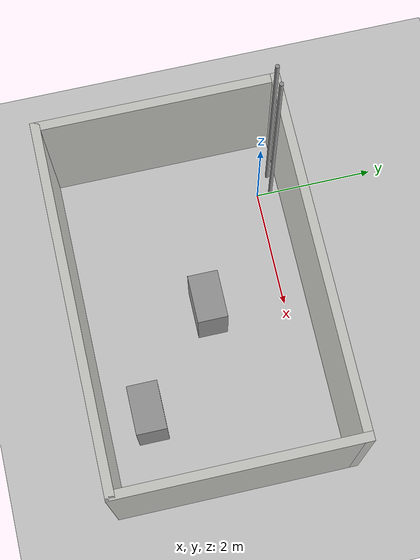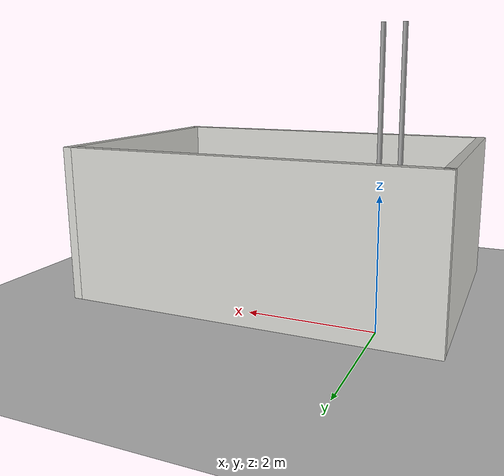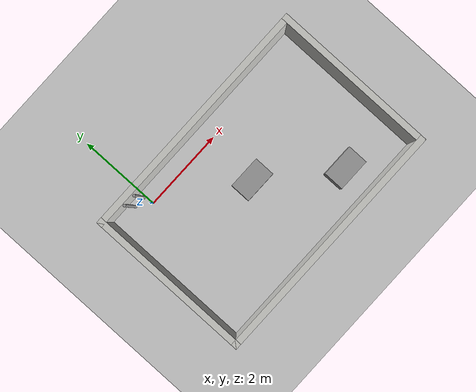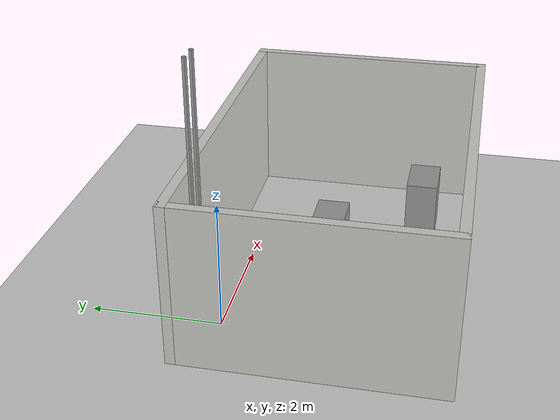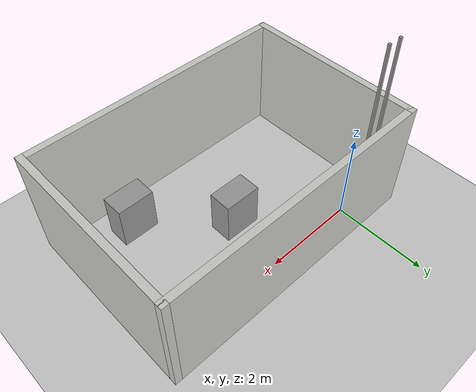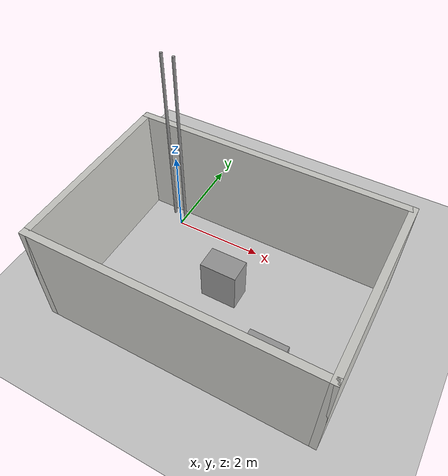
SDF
<sdf version="1.7">
 <world name="default">
  <light name="sun" type="directional">
   <pose>0 0 10 0 -0 0</pose>
   <diffuse>0.8 0.8 0.8 1</diffuse>
   <specular>0.2 0.2 0.2 1</specular>
   <attenuation>
    <range>1000</range>
    <constant>0.9</constant>
    <linear>0.01</linear>
    <quadratic>0.001</quadratic>
   </attenuation>
   <direction>-0.5 0.1 -0.9</direction>
   <spot><inner_angle>0</inner_angle><outer_angle>0</outer_angle><falloff>0</falloff></spot>
  </light>
  <model name="ground_plane">
   <static>1</static>
   <link name="link">
    <collision name="collision">
     <geometry><plane><normal>0 0 1</normal><size>100 100</size></plane></geometry>
     <surface>
      <contact><collide_bitmask>65535</collide_bitmask></contact>
      <friction><ode><mu>100</mu><mu2>50</mu2></ode></friction>
     </surface>
    </collision>
    <visual name="visual">
     <cast_shadows>0</cast_shadows>
     <geometry><plane><normal>0 0 1</normal><size>100 100</size></plane></geometry>
     <material>
      <script><uri>file://media/materials/scripts/gazebo.material</uri><name>Gazebo/Grey</name></script>
     </material>
    </visual>
   </link>
  </model>
  <gravity>0 0 -9.8</gravity>
  <magnetic_field>6e-06 2.3e-05 -4.2e-05</magnetic_field>
  <atmosphere type="adiabatic"/>
  <physics type="ode">
   <max_step_size>0.001</max_step_size>
   <real_time_factor>1</real_time_factor>
   <real_time_update_rate>1000</real_time_update_rate>
  </physics>
  <scene><ambient>0.4 0.4 0.4 1</ambient><background>0.7 0.7 0.7 1</background><shadows>1</shadows></scene>
  <spherical_coordinates>
   <surface_model>EARTH_WGS84</surface_model>
   <latitude_deg>0</latitude_deg>
   <longitude_deg>0</longitude_deg>
   <elevation>0</elevation>
   <heading_deg>0</heading_deg>
  </spherical_coordinates>
  <model name="pool">
   <pose>1.94951 -1.47242 0 0 -0 0</pose>
   <link name="Wall_14">
    <collision name="Wall_14_Collision">
     <geometry><box><size>4 0.15 2.5</size></box></geometry>
     <pose>0 0 1.25 0 -0 0</pose>
    </collision>
    <visual name="Wall_14_Visual">
     <pose>0 0 1.25 0 -0 0</pose>
     <geometry><box><size>4 0.15 2.5</size></box></geometry>
     <material>
      <script><uri>file://media/materials/scripts/gazebo.material</uri><name>Gazebo/CeilingTiled</name></script>
      <ambient>0.435294 0.796078 0.67451 1</ambient>
     </material>
     <meta><layer>0</layer></meta>
    </visual>
    <pose>-2.925 0 0 0 -0 -1.5708</pose>
   </link>
   <link name="Wall_15">
    <collision name="Wall_15_Collision">
     <geometry><box><size>6 0.15 2.5</size></box></geometry>
     <pose>0 0 1.25 0 -0 0</pose>
    </collision>
    <visual name="Wall_15_Visual">
     <pose>0 0 1.25 0 -0 0</pose>
     <geometry><box><size>6 0.15 2.5</size></box></geometry>
     <material>
      <script><uri>file://media/materials/scripts/gazebo.material</uri><name>Gazebo/CeilingTiled</name></script>
      <ambient>0.435294 0.796078 0.67451 1</ambient>
     </material>
     <meta><layer>0</layer></meta>
    </visual>
    <pose>-0 -1.925 0 0 -0 0</pose>
   </link>
   <link name="Wall_16">
    <collision name="Wall_16_Collision">
     <geometry><box><size>4 0.15 2.5</size></box></geometry>
     <pose>0 0 1.25 0 -0 0</pose>
    </collision>
    <visual name="Wall_16_Visual">
     <pose>0 0 1.25 0 -0 0</pose>
     <geometry><box><size>4 0.15 2.5</size></box></geometry>
     <material>
      <script><uri>file://media/materials/scripts/gazebo.material</uri><name>Gazebo/CeilingTiled</name></script>
      <ambient>0.435294 0.796078 0.67451 1</ambient>
     </material>
     <meta><layer>0</layer></meta>
    </visual>
    <pose>2.925 0 0 0 -0 1.5708</pose>
   </link>
   <link name="Wall_17">
    <collision name="Wall_17_Collision">
     <geometry><box><size>6 0.15 2.5</size></box></geometry>
     <pose>0 0 1.25 0 -0 0</pose>
    </collision>
    <visual name="Wall_17_Visual">
     <pose>0 0 1.25 0 -0 0</pose>
     <geometry><box><size>6 0.15 2.5</size></box></geometry>
     <material>
      <script><uri>file://media/materials/scripts/gazebo.material</uri><name>Gazebo/CeilingTiled</name></script>
      <ambient>0.435294 0.796078 0.67451 1</ambient>
     </material>
     <meta><layer>0</layer></meta>
    </visual>
    <pose>-0 1.925 0 0 -0 3.14159</pose>
   </link>
   <static>1</static>
  </model>
  <model name="unit_cylinder">
   <link name="link_0_clone">
    <inertial>
     <mass>0.0177076</mass>
     <inertia>
      <ixx>0.0268529</ixx>
      <ixy>0</ixy>
      <ixz>0</ixz>
      <iyy>0.0268529</iyy>
      <iyz>0</iyz>
      <izz>9.17694e-06</izz>
     </inertia>
    </inertial>
    <pose>-0.727364 1.30825 -0.224279 0 -0 0</pose>
    <visual name="visual">
     <geometry><cylinder><radius>0.0321946</radius><length>4.26549</length></cylinder></geometry>
     <material>
      <lighting>1</lighting>
      <script><uri>file://media/materials/scripts/gazebo.material</uri><name>Gazebo/Grey</name></script>
      <shader type="pixel"/>
     </material>
    </visual>
    <collision name="collision">
     <geometry><cylinder><radius>0.032195</radius><length>4.26549</length></cylinder></geometry>
     <surface>
      <friction>
       <ode><mu>1</mu><mu2>1</mu2><fdir1>0 0 0</fdir1><slip1>0</slip1><slip2>0</slip2></ode>
       <torsional>
        <coefficient>1</coefficient>
        <patch_radius>0</patch_radius>
        <surface_radius>0</surface_radius>
        <use_patch_radius>1</use_patch_radius>
        <ode><slip>0</slip></ode>
       </torsional>
      </friction>
      <bounce><restitution_coefficient>0</restitution_coefficient><threshold>1e+06</threshold></bounce>
      <contact>
       <collide_without_contact>0</collide_without_contact>
       <collide_without_contact_bitmask>1</collide_without_contact_bitmask>
       <collide_bitmask>1</collide_bitmask>
       <ode>
        <soft_cfm>0</soft_cfm>
        <soft_erp>0.2</soft_erp>
        <kp>1e+13</kp>
        <kd>1</kd>
        <max_vel>0.01</max_vel>
        <min_depth>0</min_depth>
       </ode>
       <bullet>
        <split_impulse>1</split_impulse>
        <split_impulse_penetration_threshold>-0.01</split_impulse_penetration_threshold>
        <soft_cfm>0</soft_cfm>
        <soft_erp>0.2</soft_erp>
        <kp>1e+13</kp>
        <kd>1</kd>
       </bullet>
      </contact>
     </surface>
    </collision>
   </link>
   <link name="link_0_clone_clone">
    <inertial>
     <mass>0.0177076</mass>
     <inertia>
      <ixx>0.0268529</ixx>
      <ixy>0</ixy>
      <ixz>0</ixz>
      <iyy>0.0268529</iyy>
      <iyz>0</iyz>
      <izz>9.17694e-06</izz>
     </inertia>
    </inertial>
    <pose>-1.00669 1.31668 -0.224279 0 -0 0</pose>
    <visual name="visual">
     <geometry><cylinder><radius>0.0321946</radius><length>4.26549</length></cylinder></geometry>
     <material>
      <lighting>1</lighting>
      <script><uri>file://media/materials/scripts/gazebo.material</uri><name>Gazebo/Grey</name></script>
      <shader type="pixel"/>
     </material>
    </visual>
    <collision name="collision">
     <geometry><cylinder><radius>0.032195</radius><length>4.26549</length></cylinder></geometry>
     <surface>
      <friction>
       <ode><mu>1</mu><mu2>1</mu2><fdir1>0 0 0</fdir1><slip1>0</slip1><slip2>0</slip2></ode>
       <torsional>
        <coefficient>1</coefficient>
        <patch_radius>0</patch_radius>
        <surface_radius>0</surface_radius>
        <use_patch_radius>1</use_patch_radius>
        <ode><slip>0</slip></ode>
       </torsional>
      </friction>
      <bounce><restitution_coefficient>0</restitution_coefficient><threshold>1e+06</threshold></bounce>
      <contact>
       <collide_without_contact>0</collide_without_contact>
       <collide_without_contact_bitmask>1</collide_without_contact_bitmask>
       <collide_bitmask>1</collide_bitmask>
       <ode>
        <soft_cfm>0</soft_cfm>
        <soft_erp>0.2</soft_erp>
        <kp>1e+13</kp>
        <kd>1</kd>
        <max_vel>0.01</max_vel>
        <min_depth>0</min_depth>
       </ode>
       <bullet>
        <split_impulse>1</split_impulse>
        <split_impulse_penetration_threshold>-0.01</split_impulse_penetration_threshold>
        <soft_cfm>0</soft_cfm>
        <soft_erp>0.2</soft_erp>
        <kp>1e+13</kp>
        <kd>1</kd>
       </bullet>
      </contact>
     </surface>
    </collision>
   </link>
   <static>0</static>
   <pose>0.691051 -1.07012 2.35702 -1e-06 6e-06 0.000665</pose>
  </model>
  <model name="unit_box_0">
   <link name="link">
    <inertial>
     <mass>1</mass>
     <inertia>
      <ixx>0.166667</ixx>
      <ixy>0</ixy>
      <ixz>0</ixz>
      <iyy>0.166667</iyy>
      <iyz>0</iyz>
      <izz>0.166667</izz>
     </inertia>
    </inertial>
    <pose>-0.240148 0.069354 1e-06 0 -0 0</pose>
    <visual name="visual">
     <geometry><box><size>0.8 0.5 1</size></box></geometry>
     <material>
      <script><name>Gazebo/Grey</name><uri>file://media/materials/scripts/gazebo.material</uri></script>
      <shader type="pixel"><normal_map>__default__</normal_map></shader>
      <ambient>0.3 0.3 0.3 1</ambient>
      <diffuse>0.7 0.7 0.7 1</diffuse>
      <specular>0.01 0.01 0.01 1</specular>
      <emissive>0 0 0 1</emissive>
     </material>
    </visual>
    <collision name="collision">
     <geometry><box><size>0.8 0.5 1</size></box></geometry>
     <surface>
      <friction>
       <ode><mu>1</mu><mu2>1</mu2><fdir1>0 0 0</fdir1><slip1>0</slip1><slip2>0</slip2></ode>
       <torsional>
        <coefficient>1</coefficient>
        <patch_radius>0</patch_radius>
        <surface_radius>0</surface_radius>
        <use_patch_radius>1</use_patch_radius>
        <ode><slip>0</slip></ode>
       </torsional>
      </friction>
      <bounce><restitution_coefficient>0</restitution_coefficient><threshold>1e+06</threshold></bounce>
      <contact>
       <collide_without_contact>0</collide_without_contact>
       <collide_without_contact_bitmask>1</collide_without_contact_bitmask>
       <collide_bitmask>1</collide_bitmask>
       <ode>
        <soft_cfm>0</soft_cfm>
        <soft_erp>0.2</soft_erp>
        <kp>1e+13</kp>
        <kd>1</kd>
        <max_vel>0.01</max_vel>
        <min_depth>0</min_depth>
       </ode>
       <bullet>
        <split_impulse>1</split_impulse>
        <split_impulse_penetration_threshold>-0.01</split_impulse_penetration_threshold>
        <soft_cfm>0</soft_cfm>
        <soft_erp>0.2</soft_erp>
        <kp>1e+13</kp>
        <kd>1</kd>
       </bullet>
      </contact>
     </surface>
    </collision>
   </link>
   <static>0</static>
   <pose>3.67795 -2.70588 0.499999 -0 -0 -0</pose>
  </model>
  <model name="unit_box">
   <link name="link">
    <inertial>
     <mass>1</mass>
     <inertia>
      <ixx>0.166667</ixx>
      <ixy>0</ixy>
      <ixz>0</ixz>
      <iyy>0.166667</iyy>
      <iyz>0</iyz>
      <izz>0.166667</izz>
     </inertia>
    </inertial>
    <pose>-0.240148 0.069354 1e-06 0 -0 0</pose>
    <visual name="visual">
     <geometry><box><size>0.8 0.5 1</size></box></geometry>
     <material>
      <script><name>Gazebo/Grey</name><uri>file://media/materials/scripts/gazebo.material</uri></script>
      <shader type="pixel"><normal_map>__default__</normal_map></shader>
      <ambient>0.3 0.3 0.3 1</ambient>
      <diffuse>0.7 0.7 0.7 1</diffuse>
      <specular>0.01 0.01 0.01 1</specular>
      <emissive>0 0 0 1</emissive>
     </material>
    </visual>
    <collision name="collision">
     <geometry><box><size>0.8 0.5 1</size></box></geometry>
     <surface>
      <friction>
       <ode><mu>1</mu><mu2>1</mu2><fdir1>0 0 0</fdir1><slip1>0</slip1><slip2>0</slip2></ode>
       <torsional>
        <coefficient>1</coefficient>
        <patch_radius>0</patch_radius>
        <surface_radius>0</surface_radius>
        <use_patch_radius>1</use_patch_radius>
        <ode><slip>0</slip></ode>
       </torsional>
      </friction>
      <bounce><restitution_coefficient>0</restitution_coefficient><threshold>1e+06</threshold></bounce>
      <contact>
       <collide_without_contact>0</collide_without_contact>
       <collide_without_contact_bitmask>1</collide_without_contact_bitmask>
       <collide_bitmask>1</collide_bitmask>
       <ode>
        <soft_cfm>0</soft_cfm>
        <soft_erp>0.2</soft_erp>
        <kp>1e+13</kp>
        <kd>1</kd>
        <max_vel>0.01</max_vel>
        <min_depth>0</min_depth>
       </ode>
       <bullet>
        <split_impulse>1</split_impulse>
        <split_impulse_penetration_threshold>-0.01</split_impulse_penetration_threshold>
        <soft_cfm>0</soft_cfm>
        <soft_erp>0.2</soft_erp>
        <kp>1e+13</kp>
        <kd>1</kd>
       </bullet>
      </contact>
     </surface>
    </collision>
   </link>
   <static>0</static>
   <pose>2.10787 -1.36554 0.499999 0 -0 -0.001973</pose>
  </model>
 </world>
</sdf>
